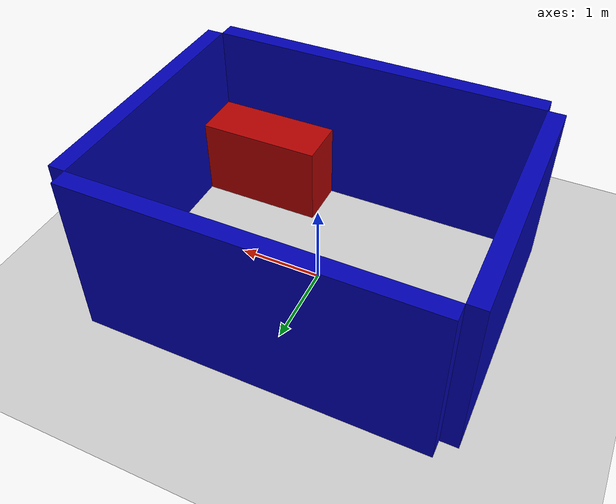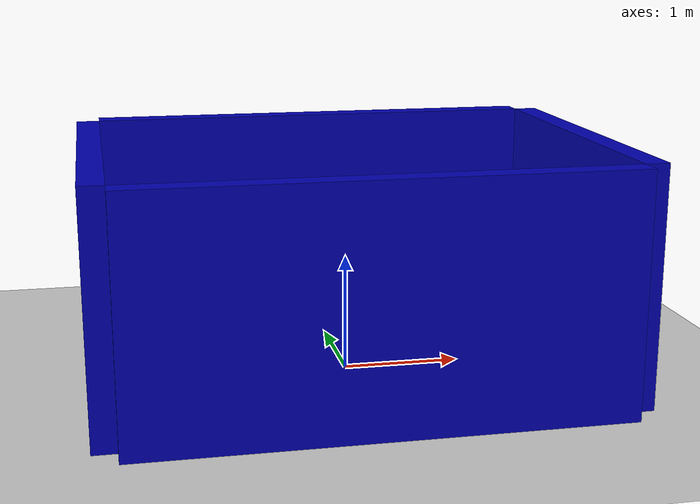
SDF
<sdf version='1.9'>
  <world name='empty'>
    <physics name='1ms' type='ignored'>
      <max_step_size>0.001</max_step_size>
      <real_time_factor>1</real_time_factor>
      <real_time_update_rate>1000</real_time_update_rate>
    </physics>
    <plugin name='gz::sim::systems::Physics' filename='ignition-gazebo-physics-system'/>
    <plugin name='gz::sim::systems::UserCommands' filename='ignition-gazebo-user-commands-system'/>
    <plugin name='gz::sim::systems::SceneBroadcaster' filename='ignition-gazebo-scene-broadcaster-system'/>
    <plugin name='gz::sim::systems::Contact' filename='ignition-gazebo-contact-system'/>
    <gravity>0 0 -9.8</gravity>
    <magnetic_field>6e-06 2.3e-05 -4.2e-05</magnetic_field>
    <atmosphere type='adiabatic'/>
    <scene>
      <ambient>0.4 0.4 0.4 1</ambient>
      <background>0.7 0.7 0.7 1</background>
      <shadows>true</shadows>
    </scene>
    <model name='ground_plane'>
      <static>true</static>
      <link name='link'>
        <collision name='collision'>
          <geometry>
            <plane>
              <normal>0 0 1</normal>
              <size>100 100</size>
            </plane>
          </geometry>
          <surface>
            <friction>
              <ode/>
            </friction>
            <bounce/>
            <contact/>
          </surface>
        </collision>
        <visual name='visual'>
          <geometry>
            <plane>
              <normal>0 0 1</normal>
              <size>100 100</size>
            </plane>
          </geometry>
          <material>
            <ambient>0.8 0.8 0.8 1</ambient>
            <diffuse>0.8 0.8 0.8 1</diffuse>
            <specular>0.8 0.8 0.8 1</specular>
          </material>
        </visual>
        <pose>0 0 0 0 -0 0</pose>
        <inertial>
          <pose>0 0 0 0 -0 0</pose>
          <mass>1</mass>
          <inertia>
            <ixx>1</ixx>
            <ixy>0</ixy>
            <ixz>0</ixz>
            <iyy>1</iyy>
            <iyz>0</iyz>
            <izz>1</izz>
          </inertia>
        </inertial>
        <enable_wind>false</enable_wind>
      </link>
      <pose>0 0 0 0 -0 0</pose>
      <self_collide>false</self_collide>
    </model>
    <model name='Wall_0'>
      <pose>0 1.6 1 0 -0 1.57079</pose>
      <link name='box_link'>
        <inertial>
          <inertia>
            <ixx>0.16666</ixx>
            <ixy>0</ixy>
            <ixz>0</ixz>
            <iyy>0.16666</iyy>
            <iyz>0</iyz>
            <izz>0.16666</izz>
          </inertia>
          <mass>1</mass>
          <pose>0 0 0 0 -0 0</pose>
        </inertial>
        <collision name='box_collision'>
          <geometry>
            <box>
              <size>0.2 4 2</size>
            </box>
          </geometry>
          <surface>
            <friction>
              <ode/>
            </friction>
            <bounce/>
            <contact/>
          </surface>
        </collision>
        <visual name='box_visual'>
          <geometry>
            <box>
              <size>0.2 4 2</size>
            </box>
          </geometry>
          <material>
            <ambient>0.3 0.3 0.3 1</ambient>
            <diffuse>0 0 0.7 1</diffuse>
            <specular>1 1 1 1</specular>
          </material>
        </visual>
        <pose>0 0 0 0 -0 0</pose>
        <enable_wind>false</enable_wind>
      </link>
      <static>true</static>
      <self_collide>false</self_collide>
    </model>
    <model name='Wall_1'>
      <pose>-2.1 0 1 0 -0 0</pose>
      <link name='box_link'>
        <inertial>
          <inertia>
            <ixx>0.16666</ixx>
            <ixy>0</ixy>
            <ixz>0</ixz>
            <iyy>0.16666</iyy>
            <iyz>0</iyz>
            <izz>0.16666</izz>
          </inertia>
          <mass>1</mass>
          <pose>0 0 0 0 -0 0</pose>
        </inertial>
        <collision name='box_collision'>
          <geometry>
            <box>
              <size>0.2 3 2</size>
            </box>
          </geometry>
          <surface>
            <friction>
              <ode/>
            </friction>
            <bounce/>
            <contact/>
          </surface>
        </collision>
        <visual name='box_visual'>
          <geometry>
            <box>
              <size>0.2 3 2</size>
            </box>
          </geometry>
          <material>
            <ambient>0.3 0.3 0.3 1</ambient>
            <diffuse>0 0 0.7 1</diffuse>
            <specular>1 1 1 1</specular>
          </material>
        </visual>
        <pose>0 0 0 0 -0 0</pose>
        <enable_wind>false</enable_wind>
      </link>
      <static>true</static>
      <self_collide>false</self_collide>
    </model>
    <model name='wall_2'>
      <pose>0 -1.6 1 0 -0 1.57079</pose>
      <link name='box_link'>
        <inertial>
          <inertia>
            <ixx>0.16666</ixx>
            <ixy>0</ixy>
            <ixz>0</ixz>
            <iyy>0.16666</iyy>
            <iyz>0</iyz>
            <izz>0.16666</izz>
          </inertia>
          <mass>1</mass>
          <pose>0 0 0 0 -0 0</pose>
        </inertial>
        <collision name='box_collision'>
          <geometry>
            <box>
              <size>0.2 4 2</size>
            </box>
          </geometry>
          <surface>
            <friction>
              <ode/>
            </friction>
            <bounce/>
            <contact/>
          </surface>
        </collision>
        <visual name='box_visual'>
          <geometry>
            <box>
              <size>0.2 4 2</size>
            </box>
          </geometry>
          <material>
            <ambient>0.3 0.3 0.3 1</ambient>
            <diffuse>0 0 0.7 1</diffuse>
            <specular>1 1 1 1</specular>
          </material>
        </visual>
        <pose>0 0 0 0 -0 0</pose>
        <enable_wind>false</enable_wind>
      </link>
      <static>true</static>
      <self_collide>false</self_collide>
    </model>
    <model name='wall_3'>
      <pose>2.1 0 1 0 -0 0</pose>
      <link name='box_link'>
        <inertial>
          <inertia>
            <ixx>0.16666</ixx>
            <ixy>0</ixy>
            <ixz>0</ixz>
            <iyy>0.16666</iyy>
            <iyz>0</iyz>
            <izz>0.16666</izz>
          </inertia>
          <mass>1</mass>
          <pose>0 0 0 0 -0 0</pose>
        </inertial>
        <collision name='box_collision'>
          <geometry>
            <box>
              <size>0.2 3 2</size>
            </box>
          </geometry>
          <surface>
            <friction>
              <ode/>
            </friction>
            <bounce/>
            <contact/>
          </surface>
        </collision>
        <visual name='box_visual'>
          <geometry>
            <box>
              <size>0.2 3 2</size>
            </box>
          </geometry>
          <material>
            <ambient>0.3 0.3 0.3 1</ambient>
            <diffuse>0 0 0.7 1</diffuse>
            <specular>1 1 1 1</specular>
          </material>
        </visual>
        <pose>0 0 0 0 -0 0</pose>
        <enable_wind>false</enable_wind>
      </link>
      <static>true</static>
      <self_collide>false</self_collide>
    </model>
    <model name='table'>
      <pose>1.25 -1.2 0.5 0 -0 0</pose>
      <link name='box_link'>
        <inertial>
          <inertia>
            <ixx>0.16666</ixx>
            <ixy>0</ixy>
            <ixz>0</ixz>
            <iyy>0.16666</iyy>
            <iyz>0</iyz>
            <izz>0.16666</izz>
          </inertia>
          <mass>1</mass>
          <pose>0 0 0 0 -0 0</pose>
        </inertial>
        <collision name='box_collision'>
          <geometry>
            <box>
              <size>1.5 0.6 1</size>
            </box>
          </geometry>
          <surface>
            <friction>
              <ode/>
            </friction>
            <bounce/>
            <contact/>
          </surface>
        </collision>
        <visual name='box_visual'>
          <geometry>
            <box>
              <size>1.5 0.6 1</size>
            </box>
          </geometry>
          <material>
            <ambient>0.3 0.3 0.3 1</ambient>
            <diffuse>0.7 0 0 1</diffuse>
            <specular>1 1 1 1</specular>
          </material>
        </visual>
        <pose>0 0 0 0 -0 0</pose>
        <enable_wind>false</enable_wind>
      </link>
      <static>true</static>
      <self_collide>false</self_collide>
    </model>
    <light name='sun' type='directional'>
      <pose>0 0 10 0 -0 0</pose>
      <cast_shadows>true</cast_shadows>
      <intensity>1</intensity>
      <direction>-0.5 0.1 -0.9</direction>
      <diffuse>0.8 0.8 0.8 1</diffuse>
      <specular>0.2 0.2 0.2 1</specular>
      <attenuation>
        <range>1000</range>
        <linear>0.01</linear>
        <constant>0.90000000000000002</constant>
        <quadratic>0.001</quadratic>
      </attenuation>
      <spot>
        <inner_angle>0</inner_angle>
        <outer_angle>0</outer_angle>
        <falloff>0</falloff>
      </spot>
    </light>
  </world>
</sdf>
